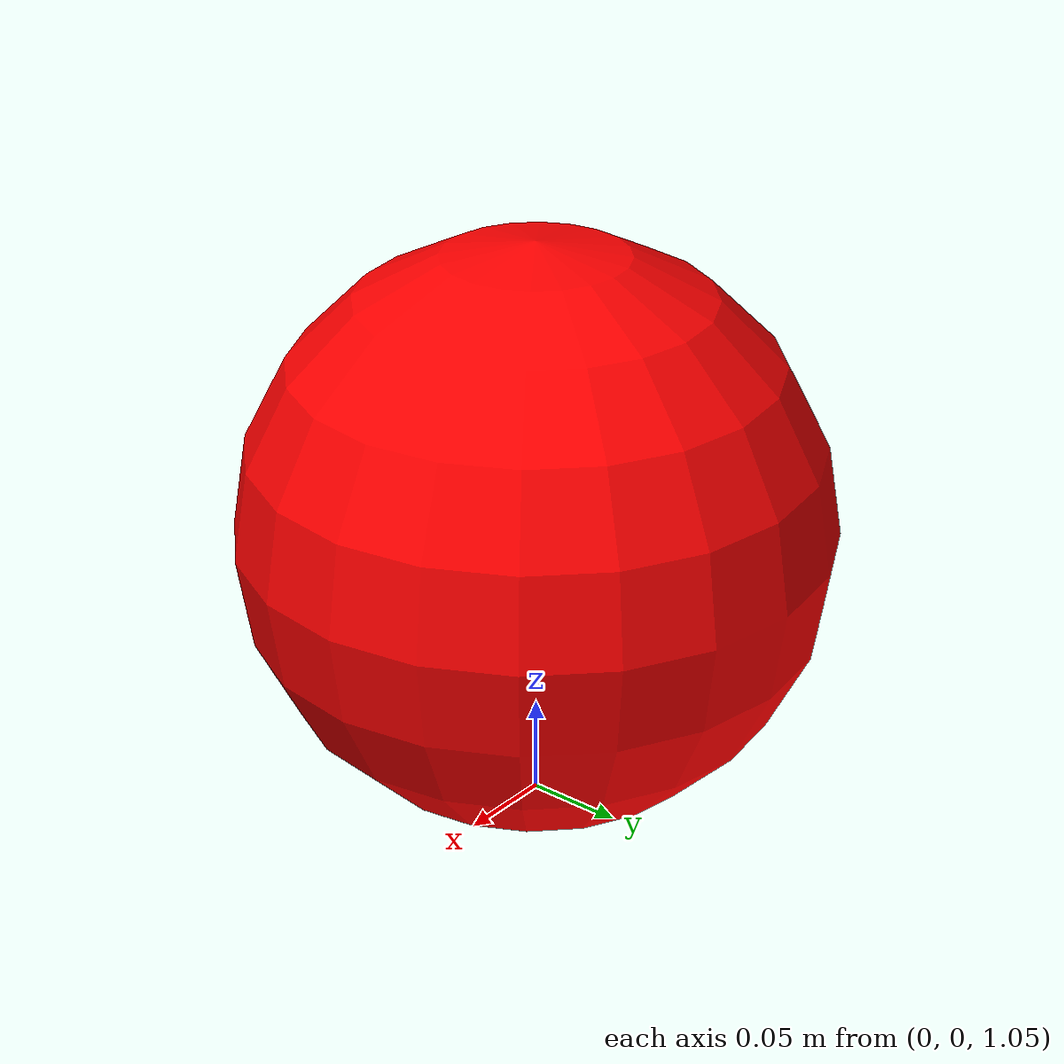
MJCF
<mujoco>
    <option timestep="0.005" />
    <worldbody>
        <body name="robot" pos="0 0 1.2">
            <joint axis="1 0 0" damping="0.1" name="slide0" pos="0 0 0" type="slide"/>
            <joint axis="0 1 0" damping="0.1" name="slide1" pos="0 0 0" type="slide"/>
            <joint axis="0 0 1" damping="1" name="slide2" pos="0 0 0" type="slide"/>
            <geom mass="1.0" pos="0 0 0" rgba="1 0 0 1" size="0.15" type="sphere"/>
			<camera euler="0 0 0" fovy="40" name="rgb" pos="0 0 2.5"></camera>
        </body>
        <body name="floor" pos="0 0 0.025">
            <geom condim="3" size="1.0 1.0 0.02" rgba="0 1 0 1" type="box"/>
        </body>
    </worldbody>
</mujoco>
